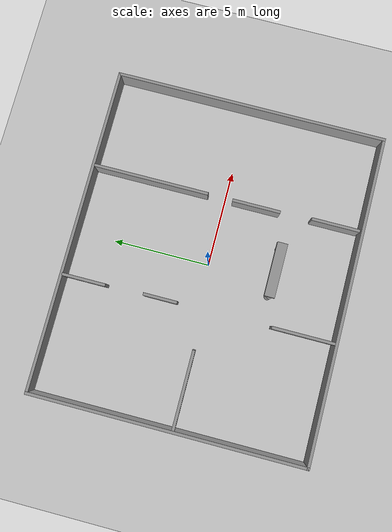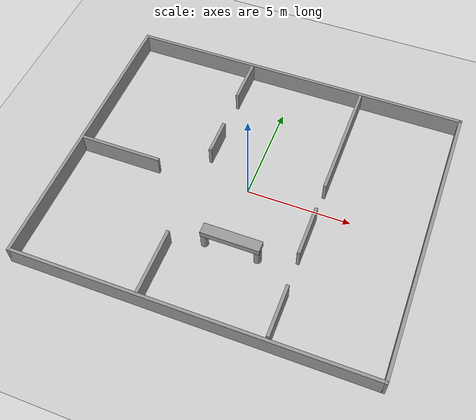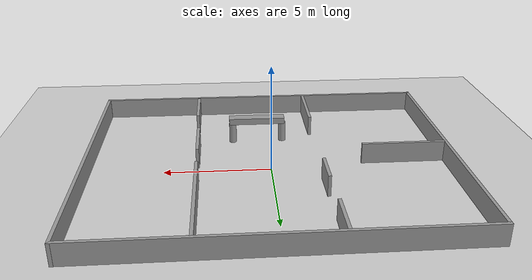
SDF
<sdf version="1.7">
 <world name="default">
  <light name="sun" type="directional">
   <pose>0 0 10 0 -0 0</pose>
   <diffuse>0.8 0.8 0.8 1</diffuse>
   <specular>0.2 0.2 0.2 1</specular>
   <attenuation>
    <range>1000</range>
    <constant>0.9</constant>
    <linear>0.01</linear>
    <quadratic>0.001</quadratic>
   </attenuation>
   <direction>-0.5 0.1 -0.9</direction>
   <spot><inner_angle>0</inner_angle><outer_angle>0</outer_angle><falloff>0</falloff></spot>
  </light>
  <model name="ground_plane">
   <static>1</static>
   <link name="link">
    <collision name="collision">
     <geometry><plane><normal>0 0 1</normal><size>100 100</size></plane></geometry>
     <surface>
      <contact><collide_bitmask>65535</collide_bitmask></contact>
      <friction><ode><mu>100</mu><mu2>50</mu2></ode></friction>
     </surface>
    </collision>
    <visual name="visual">
     <cast_shadows>0</cast_shadows>
     <geometry><plane><normal>0 0 1</normal><size>100 100</size></plane></geometry>
     <material>
      <script><uri>file://media/materials/scripts/gazebo.material</uri><name>Gazebo/Grey</name></script>
     </material>
    </visual>
   </link>
  </model>
  <model name="world_1">
   <pose>0.034874 -0.085627 0 0 -0 0</pose>
   <link name="Wall_13">
    <collision name="Wall_13_Collision">
     <geometry><box><size>6 0.15 1</size></box></geometry>
     <pose>0 0 0.5 0 -0 0</pose>
    </collision>
    <visual name="Wall_13_Visual">
     <pose>0 0 0.5 0 -0 0</pose>
     <geometry><box><size>6 0.15 1</size></box></geometry>
     <material>
      <script><uri>file://media/materials/scripts/gazebo.material</uri><name>Gazebo/Grey</name></script>
      <ambient>1 1 1 1</ambient>
     </material>
     <meta><layer>0</layer></meta>
    </visual>
    <pose>3.394 3.99 0 0 -0 -1.5708</pose>
   </link>
   <link name="Wall_15">
    <collision name="Wall_15_Collision">
     <geometry><box><size>2.5 0.15 1</size></box></geometry>
     <pose>0 0 0.5 0 -0 0</pose>
    </collision>
    <visual name="Wall_15_Visual">
     <pose>0 0 0.5 0 -0 0</pose>
     <geometry><box><size>2.5 0.15 1</size></box></geometry>
     <material>
      <script><uri>file://media/materials/scripts/gazebo.material</uri><name>Gazebo/Grey</name></script>
      <ambient>1 1 1 1</ambient>
     </material>
     <meta><layer>0</layer></meta>
    </visual>
    <pose>3.394 -1.542 0 0 -0 -1.5708</pose>
   </link>
   <link name="Wall_17">
    <collision name="Wall_17_Collision">
     <geometry><box><size>2.5 0.15 1</size></box></geometry>
     <pose>0 0 0.5 0 -0 0</pose>
    </collision>
    <visual name="Wall_17_Visual">
     <pose>0 0 0.5 0 -0 0</pose>
     <geometry><box><size>2.5 0.15 1</size></box></geometry>
     <material>
      <script><uri>file://media/materials/scripts/gazebo.material</uri><name>Gazebo/Grey</name></script>
      <ambient>1 1 1 1</ambient>
     </material>
     <meta><layer>0</layer></meta>
    </visual>
    <pose>3.464 -5.658 0 0 -0 -1.5708</pose>
   </link>
   <link name="Wall_42">
    <collision name="Wall_42_Collision">
     <geometry><box><size>4 0.15 1</size></box></geometry>
     <pose>0 0 0.5 0 -0 0</pose>
    </collision>
    <visual name="Wall_42_Visual">
     <pose>0 0 0.5 0 -0 0</pose>
     <geometry><box><size>4 0.15 1</size></box></geometry>
     <material>
      <script><uri>file://media/materials/scripts/gazebo.material</uri><name>Gazebo/Grey</name></script>
      <ambient>1 1 1 1</ambient>
     </material>
     <meta><layer>0</layer></meta>
    </visual>
    <pose>-6.379 -0.32 0 0 -0 0</pose>
   </link>
   <link name="Wall_44">
    <collision name="Wall_44_Collision">
     <geometry><box><size>2.25 0.15 1</size></box></geometry>
     <pose>0 0 0.5 0 -0 0</pose>
    </collision>
    <visual name="Wall_44_Visual">
     <pose>0 0 0.5 0 -0 0</pose>
     <geometry><box><size>2.25 0.15 1</size></box></geometry>
     <material>
      <script><uri>file://media/materials/scripts/gazebo.material</uri><name>Gazebo/Grey</name></script>
      <ambient>1 1 1 1</ambient>
     </material>
     <meta><layer>0</layer></meta>
    </visual>
    <pose>-2.397 5.891 0 0 -0 -1.5708</pose>
   </link>
   <link name="Wall_46">
    <collision name="Wall_46_Collision">
     <geometry><box><size>1.75 0.15 1</size></box></geometry>
     <pose>0 0 0.5 0 -0 0</pose>
    </collision>
    <visual name="Wall_46_Visual">
     <pose>0 0 0.5 0 -0 0</pose>
     <geometry><box><size>1.75 0.15 1</size></box></geometry>
     <material>
      <script><uri>file://media/materials/scripts/gazebo.material</uri><name>Gazebo/Grey</name></script>
      <ambient>1 1 1 1</ambient>
     </material>
     <meta><layer>0</layer></meta>
    </visual>
    <pose>-2.336 1.957 0 0 -0 -1.5708</pose>
   </link>
   <link name="Wall_48">
    <collision name="Wall_48_Collision">
     <geometry><box><size>3.25 0.15 1</size></box></geometry>
     <pose>0 0 0.5 0 -0 0</pose>
    </collision>
    <visual name="Wall_48_Visual">
     <pose>0 0 0.5 0 -0 0</pose>
     <geometry><box><size>3.25 0.15 1</size></box></geometry>
     <material>
      <script><uri>file://media/materials/scripts/gazebo.material</uri><name>Gazebo/Grey</name></script>
      <ambient>1 1 1 1</ambient>
     </material>
     <meta><layer>0</layer></meta>
    </visual>
    <pose>-2.336 -5.377 0 0 -0 -1.5708</pose>
   </link>
   <link name="Wall_5">
    <collision name="Wall_5_Collision">
     <geometry><box><size>17 0.15 1</size></box></geometry>
     <pose>0 0 0.5 0 -0 0</pose>
    </collision>
    <visual name="Wall_5_Visual">
     <pose>0 0 0.5 0 -0 0</pose>
     <geometry><box><size>17 0.15 1</size></box></geometry>
     <material>
      <script><uri>file://media/materials/scripts/gazebo.material</uri><name>Gazebo/Grey</name></script>
      <ambient>1 1 1 1</ambient>
     </material>
     <meta><layer>0</layer></meta>
    </visual>
    <pose>0 -7.05 0 0 -0 0</pose>
   </link>
   <link name="Wall_6">
    <collision name="Wall_6_Collision">
     <geometry><box><size>14.25 0.15 1</size></box></geometry>
     <pose>0 0 0.5 0 -0 0</pose>
    </collision>
    <visual name="Wall_6_Visual">
     <pose>0 0 0.5 0 -0 0</pose>
     <geometry><box><size>14.25 0.15 1</size></box></geometry>
     <material>
      <script><uri>file://media/materials/scripts/gazebo.material</uri><name>Gazebo/Grey</name></script>
      <ambient>1 1 1 1</ambient>
     </material>
     <meta><layer>0</layer></meta>
    </visual>
    <pose>8.425 -0 0 0 -0 1.5708</pose>
   </link>
   <link name="Wall_7">
    <collision name="Wall_7_Collision">
     <geometry><box><size>17 0.15 1</size></box></geometry>
     <pose>0 0 0.5 0 -0 0</pose>
    </collision>
    <visual name="Wall_7_Visual">
     <pose>0 0 0.5 0 -0 0</pose>
     <geometry><box><size>17 0.15 1</size></box></geometry>
     <material>
      <script><uri>file://media/materials/scripts/gazebo.material</uri><name>Gazebo/Grey</name></script>
      <ambient>1 1 1 1</ambient>
     </material>
     <meta><layer>0</layer></meta>
    </visual>
    <pose>0 7.05 0 0 -0 3.14159</pose>
   </link>
   <link name="Wall_8">
    <collision name="Wall_8_Collision">
     <geometry><box><size>14.25 0.15 1</size></box></geometry>
     <pose>0 0 0.5 0 -0 0</pose>
    </collision>
    <visual name="Wall_8_Visual">
     <pose>0 0 0.5 0 -0 0</pose>
     <geometry><box><size>14.25 0.15 1</size></box></geometry>
     <material>
      <script><uri>file://media/materials/scripts/gazebo.material</uri><name>Gazebo/Grey</name></script>
      <ambient>1 1 1 1</ambient>
     </material>
     <meta><layer>0</layer></meta>
    </visual>
    <pose>-8.425 -0 0 0 -0 -1.5708</pose>
   </link>
   <static>1</static>
  </model>
  <gravity>0 0 -0.8</gravity>
  <magnetic_field>6e-06 2.3e-05 -4.2e-05</magnetic_field>
  <atmosphere type="adiabatic"/>
  <physics type="ode">
   <max_step_size>0.001</max_step_size>
   <real_time_factor>1</real_time_factor>
   <real_time_update_rate>1000</real_time_update_rate>
  </physics>
  <scene><ambient>0.4 0.4 0.4 1</ambient><background>0.7 0.7 0.7 1</background><shadows>1</shadows></scene>
  <spherical_coordinates>
   <surface_model>EARTH_WGS84</surface_model>
   <latitude_deg>0</latitude_deg>
   <longitude_deg>0</longitude_deg>
   <elevation>0</elevation>
   <heading_deg>0</heading_deg>
  </spherical_coordinates>
  <model name="unit_cylinder">
   <pose>-0.800721 -3.3389 0.503224 -0 -0 -0.011472</pose>
   <link name="link">
    <inertial>
     <mass>1</mass>
     <inertia><ixx>0.145833</ixx><ixy>0</ixy><ixz>0</ixz><iyy>0.145833</iyy><iyz>0</iyz><izz>0.125</izz></inertia>
    </inertial>
    <collision name="collision">
     <geometry><cylinder><radius>0.176405</radius><length>1.00645</length></cylinder></geometry>
    </collision>
    <visual name="visual">
     <geometry><cylinder><radius>0.176405</radius><length>1.00645</length></cylinder></geometry>
     <material>
      <script><name>Gazebo/Grey</name><uri>file://media/materials/scripts/gazebo.material</uri></script>
     </material>
    </visual>
   </link>
  </model>
  <model name="unit_cylinder_clone">
   <pose>1.7074 -3.31125 0.503214 1e-06 -0 -0.001104</pose>
   <link name="link">
    <inertial>
     <mass>1</mass>
     <inertia><ixx>0.145833</ixx><ixy>0</ixy><ixz>0</ixz><iyy>0.145833</iyy><iyz>0</iyz><izz>0.125</izz></inertia>
    </inertial>
    <collision name="collision">
     <geometry><cylinder><radius>0.176405</radius><length>1.00645</length></cylinder></geometry>
    </collision>
    <visual name="visual">
     <geometry><cylinder><radius>0.176405</radius><length>1.00645</length></cylinder></geometry>
     <material>
      <script><name>Gazebo/Grey</name><uri>file://media/materials/scripts/gazebo.material</uri></script>
     </material>
    </visual>
   </link>
  </model>
  <model name="unit_box">
   <pose>0.490834 -3.33624 1.16066 1.4e-05 7e-06 -0.00221</pose>
   <link name="link">
    <inertial>
     <mass>1</mass>
     <inertia>
      <ixx>0.166667</ixx>
      <ixy>0</ixy>
      <ixz>0</ixz>
      <iyy>0.166667</iyy>
      <iyz>0</iyz>
      <izz>0.166667</izz>
     </inertia>
    </inertial>
    <collision name="collision"><geometry><box><size>2.76956 0.528706 0.308428</size></box></geometry></collision>
    <visual name="visual">
     <geometry><box><size>2.76956 0.528706 0.308428</size></box></geometry>
     <material>
      <script><name>Gazebo/Grey</name><uri>file://media/materials/scripts/gazebo.material</uri></script>
     </material>
    </visual>
   </link>
  </model>
 </world>
</sdf>
